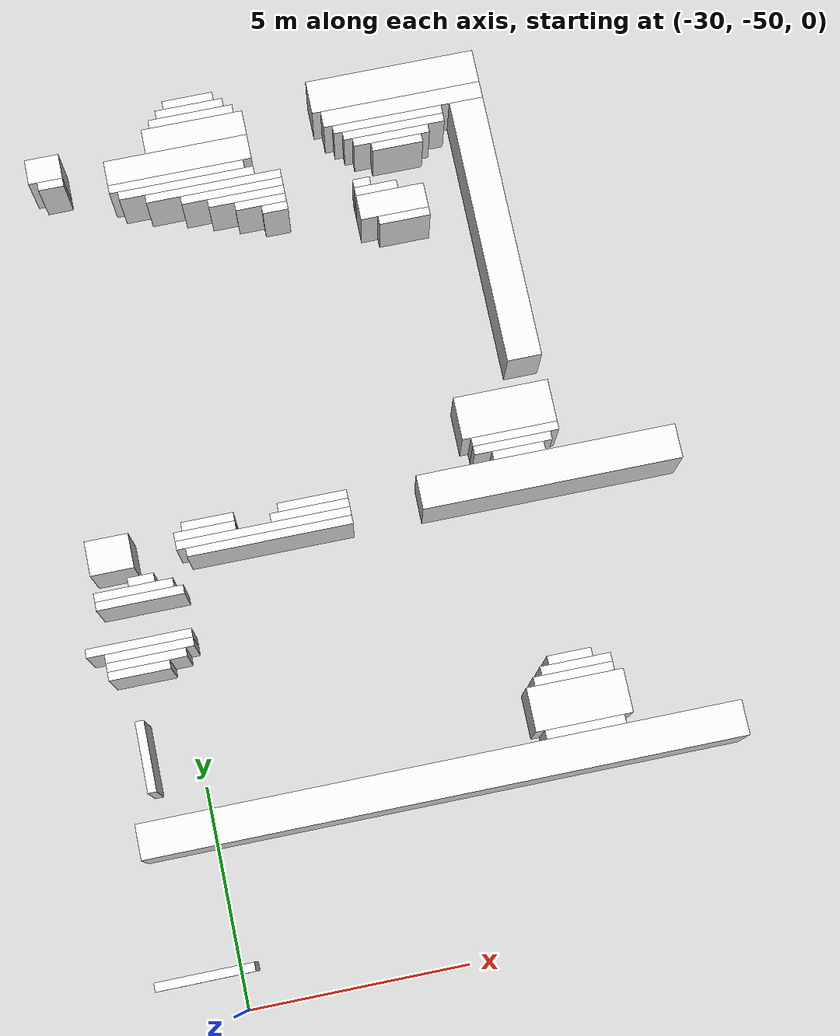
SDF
<sdf version="1.7">
 <world name="default">
  <model name="ground_plane">
   <static>1</static>
   <link name="link">
    <collision name="collision">
     <geometry><plane><normal>0 0 1</normal><size>120 120</size></plane></geometry>
    </collision>
    <visual name="visual">
     <geometry><plane><normal>0 0 1</normal><size>120 120</size></plane></geometry>
     <material>
      <script><uri>file://media/materials/scripts/gazebo.material</uri><name>Gazebo/Grey</name></script>
     </material>
    </visual>
   </link>
  </model>
  <model name="random_complex_02_model">
   <static>1</static>
   <link name="obs_3059">
    <pose>-27.4000 -29.3000 0.8000 0 0 0</pose>
    <collision name="obs_3059_col"><geometry><box><size>1.2000 0.2000 1.6000</size></box></geometry></collision>
    <visual name="obs_3059_vis">
     <geometry><box><size>1.2000 0.2000 1.6000</size></box></geometry>
     <material>
      <script><uri>file://media/materials/scripts/gazebo.material</uri><name>Gazebo/White</name></script>
     </material>
    </visual>
   </link>
   <link name="obs_3065">
    <pose>-27.4000 -29.5000 0.8000 0 0 0</pose>
    <collision name="obs_3065_col"><geometry><box><size>1.6000 0.2000 1.6000</size></box></geometry></collision>
    <visual name="obs_3065_vis">
     <geometry><box><size>1.6000 0.2000 1.6000</size></box></geometry>
     <material>
      <script><uri>file://media/materials/scripts/gazebo.material</uri><name>Gazebo/White</name></script>
     </material>
    </visual>
   </link>
   <link name="obs_3073">
    <pose>-27.4000 -29.7000 0.8000 0 0 0</pose>
    <collision name="obs_3073_col"><geometry><box><size>2.0000 0.2000 1.6000</size></box></geometry></collision>
    <visual name="obs_3073_vis">
     <geometry><box><size>2.0000 0.2000 1.6000</size></box></geometry>
     <material>
      <script><uri>file://media/materials/scripts/gazebo.material</uri><name>Gazebo/White</name></script>
     </material>
    </visual>
   </link>
   <link name="obs_3086">
    <pose>-22.6000 -29.8000 0.8000 0 0 0</pose>
    <collision name="obs_3086_col"><geometry><box><size>4.0000 0.8000 1.6000</size></box></geometry></collision>
    <visual name="obs_3086_vis">
     <geometry><box><size>4.0000 0.8000 1.6000</size></box></geometry>
     <material>
      <script><uri>file://media/materials/scripts/gazebo.material</uri><name>Gazebo/White</name></script>
     </material>
    </visual>
   </link>
   <link name="obs_3090">
    <pose>-27.4000 -30.1000 0.8000 0 0 0</pose>
    <collision name="obs_3090_col"><geometry><box><size>2.4000 0.6000 1.6000</size></box></geometry></collision>
    <visual name="obs_3090_vis">
     <geometry><box><size>2.4000 0.6000 1.6000</size></box></geometry>
     <material>
      <script><uri>file://media/materials/scripts/gazebo.material</uri><name>Gazebo/White</name></script>
     </material>
    </visual>
   </link>
   <link name="obs_3095">
    <pose>-31.0000 -30.3000 0.8000 0 0 0</pose>
    <collision name="obs_3095_col"><geometry><box><size>0.8000 0.6000 1.6000</size></box></geometry></collision>
    <visual name="obs_3095_vis">
     <geometry><box><size>0.8000 0.6000 1.6000</size></box></geometry>
     <material>
      <script><uri>file://media/materials/scripts/gazebo.material</uri><name>Gazebo/White</name></script>
     </material>
    </visual>
   </link>
   <link name="obs_3096">
    <pose>-22.5000 -30.4000 0.8000 0 0 0</pose>
    <collision name="obs_3096_col"><geometry><box><size>3.8000 0.4000 1.6000</size></box></geometry></collision>
    <visual name="obs_3096_vis">
     <geometry><box><size>3.8000 0.4000 1.6000</size></box></geometry>
     <material>
      <script><uri>file://media/materials/scripts/gazebo.material</uri><name>Gazebo/White</name></script>
     </material>
    </visual>
   </link>
   <link name="obs_3102">
    <pose>-30.9000 -30.7000 0.8000 0 0 0</pose>
    <collision name="obs_3102_col"><geometry><box><size>0.6000 0.2000 1.6000</size></box></geometry></collision>
    <visual name="obs_3102_vis">
     <geometry><box><size>0.6000 0.2000 1.6000</size></box></geometry>
     <material>
      <script><uri>file://media/materials/scripts/gazebo.material</uri><name>Gazebo/White</name></script>
     </material>
    </visual>
   </link>
   <link name="obs_3103">
    <pose>-22.9000 -30.7000 0.8000 0 0 0</pose>
    <collision name="obs_3103_col"><geometry><box><size>2.6000 0.2000 1.6000</size></box></geometry></collision>
    <visual name="obs_3103_vis">
     <geometry><box><size>2.6000 0.2000 1.6000</size></box></geometry>
     <material>
      <script><uri>file://media/materials/scripts/gazebo.material</uri><name>Gazebo/White</name></script>
     </material>
    </visual>
   </link>
   <link name="obs_3107">
    <pose>-27.9000 -30.7000 0.8000 0 0 0</pose>
    <collision name="obs_3107_col"><geometry><box><size>3.4000 0.6000 1.6000</size></box></geometry></collision>
    <visual name="obs_3107_vis">
     <geometry><box><size>3.4000 0.6000 1.6000</size></box></geometry>
     <material>
      <script><uri>file://media/materials/scripts/gazebo.material</uri><name>Gazebo/White</name></script>
     </material>
    </visual>
   </link>
   <link name="obs_3108">
    <pose>-22.8000 -30.9000 0.8000 0 0 0</pose>
    <collision name="obs_3108_col"><geometry><box><size>2.4000 0.2000 1.6000</size></box></geometry></collision>
    <visual name="obs_3108_vis">
     <geometry><box><size>2.4000 0.2000 1.6000</size></box></geometry>
     <material>
      <script><uri>file://media/materials/scripts/gazebo.material</uri><name>Gazebo/White</name></script>
     </material>
    </visual>
   </link>
   <link name="obs_3117">
    <pose>-28.0000 -31.1000 0.8000 0 0 0</pose>
    <collision name="obs_3117_col"><geometry><box><size>3.2000 0.2000 1.6000</size></box></geometry></collision>
    <visual name="obs_3117_vis">
     <geometry><box><size>3.2000 0.2000 1.6000</size></box></geometry>
     <material>
      <script><uri>file://media/materials/scripts/gazebo.material</uri><name>Gazebo/White</name></script>
     </material>
    </visual>
   </link>
   <link name="obs_3118">
    <pose>-22.9000 -31.1000 0.8000 0 0 0</pose>
    <collision name="obs_3118_col"><geometry><box><size>1.8000 0.2000 1.6000</size></box></geometry></collision>
    <visual name="obs_3118_vis">
     <geometry><box><size>1.8000 0.2000 1.6000</size></box></geometry>
     <material>
      <script><uri>file://media/materials/scripts/gazebo.material</uri><name>Gazebo/White</name></script>
     </material>
    </visual>
   </link>
   <link name="obs_3122">
    <pose>-27.8000 -31.3000 0.8000 0 0 0</pose>
    <collision name="obs_3122_col"><geometry><box><size>3.2000 0.2000 1.6000</size></box></geometry></collision>
    <visual name="obs_3122_vis">
     <geometry><box><size>3.2000 0.2000 1.6000</size></box></geometry>
     <material>
      <script><uri>file://media/materials/scripts/gazebo.material</uri><name>Gazebo/White</name></script>
     </material>
    </visual>
   </link>
   <link name="obs_3123">
    <pose>-22.8000 -31.3000 0.8000 0 0 0</pose>
    <collision name="obs_3123_col"><geometry><box><size>1.2000 0.2000 1.6000</size></box></geometry></collision>
    <visual name="obs_3123_vis">
     <geometry><box><size>1.2000 0.2000 1.6000</size></box></geometry>
     <material>
      <script><uri>file://media/materials/scripts/gazebo.material</uri><name>Gazebo/White</name></script>
     </material>
    </visual>
   </link>
   <link name="obs_3129">
    <pose>-27.2000 -31.5000 0.8000 0 0 0</pose>
    <collision name="obs_3129_col"><geometry><box><size>3.2000 0.2000 1.6000</size></box></geometry></collision>
    <visual name="obs_3129_vis">
     <geometry><box><size>3.2000 0.2000 1.6000</size></box></geometry>
     <material>
      <script><uri>file://media/materials/scripts/gazebo.material</uri><name>Gazebo/White</name></script>
     </material>
    </visual>
   </link>
   <link name="obs_3134">
    <pose>-26.8000 -31.7000 0.8000 0 0 0</pose>
    <collision name="obs_3134_col"><geometry><box><size>2.4000 0.2000 1.6000</size></box></geometry></collision>
    <visual name="obs_3134_vis">
     <geometry><box><size>2.4000 0.2000 1.6000</size></box></geometry>
     <material>
      <script><uri>file://media/materials/scripts/gazebo.material</uri><name>Gazebo/White</name></script>
     </material>
    </visual>
   </link>
   <link name="obs_3144">
    <pose>-26.5000 -31.9000 0.8000 0 0 0</pose>
    <collision name="obs_3144_col"><geometry><box><size>1.8000 0.2000 1.6000</size></box></geometry></collision>
    <visual name="obs_3144_vis">
     <geometry><box><size>1.8000 0.2000 1.6000</size></box></geometry>
     <material>
      <script><uri>file://media/materials/scripts/gazebo.material</uri><name>Gazebo/White</name></script>
     </material>
    </visual>
   </link>
   <link name="obs_3149">
    <pose>-26.2000 -32.1000 0.8000 0 0 0</pose>
    <collision name="obs_3149_col"><geometry><box><size>1.2000 0.2000 1.6000</size></box></geometry></collision>
    <visual name="obs_3149_vis">
     <geometry><box><size>1.2000 0.2000 1.6000</size></box></geometry>
     <material>
      <script><uri>file://media/materials/scripts/gazebo.material</uri><name>Gazebo/White</name></script>
     </material>
    </visual>
   </link>
   <link name="obs_3150">
    <pose>-23.8000 -32.1000 0.8000 0 0 0</pose>
    <collision name="obs_3150_col"><geometry><box><size>0.4000 0.2000 1.6000</size></box></geometry></collision>
    <visual name="obs_3150_vis">
     <geometry><box><size>0.4000 0.2000 1.6000</size></box></geometry>
     <material>
      <script><uri>file://media/materials/scripts/gazebo.material</uri><name>Gazebo/White</name></script>
     </material>
    </visual>
   </link>
   <link name="obs_3154">
    <pose>-25.9000 -32.3000 0.8000 0 0 0</pose>
    <collision name="obs_3154_col"><geometry><box><size>0.6000 0.2000 1.6000</size></box></geometry></collision>
    <visual name="obs_3154_vis">
     <geometry><box><size>0.6000 0.2000 1.6000</size></box></geometry>
     <material>
      <script><uri>file://media/materials/scripts/gazebo.material</uri><name>Gazebo/White</name></script>
     </material>
    </visual>
   </link>
   <link name="obs_3155">
    <pose>-23.5000 -32.3000 0.8000 0 0 0</pose>
    <collision name="obs_3155_col"><geometry><box><size>1.0000 0.2000 1.6000</size></box></geometry></collision>
    <visual name="obs_3155_vis">
     <geometry><box><size>1.0000 0.2000 1.6000</size></box></geometry>
     <material>
      <script><uri>file://media/materials/scripts/gazebo.material</uri><name>Gazebo/White</name></script>
     </material>
    </visual>
   </link>
   <link name="obs_3163">
    <pose>-23.2000 -32.7000 0.8000 0 0 0</pose>
    <collision name="obs_3163_col"><geometry><box><size>1.6000 0.6000 1.6000</size></box></geometry></collision>
    <visual name="obs_3163_vis">
     <geometry><box><size>1.6000 0.6000 1.6000</size></box></geometry>
     <material>
      <script><uri>file://media/materials/scripts/gazebo.material</uri><name>Gazebo/White</name></script>
     </material>
    </visual>
   </link>
   <link name="obs_3167">
    <pose>-23.0000 -33.1000 0.8000 0 0 0</pose>
    <collision name="obs_3167_col"><geometry><box><size>1.2000 0.2000 1.6000</size></box></geometry></collision>
    <visual name="obs_3167_vis">
     <geometry><box><size>1.2000 0.2000 1.6000</size></box></geometry>
     <material>
      <script><uri>file://media/materials/scripts/gazebo.material</uri><name>Gazebo/White</name></script>
     </material>
    </visual>
   </link>
   <link name="obs_3220">
    <pose>-21.0000 -33.8000 0.8000 0 0 0</pose>
    <collision name="obs_3220_col"><geometry><box><size>0.8000 6.4000 1.6000</size></box></geometry></collision>
    <visual name="obs_3220_vis">
     <geometry><box><size>0.8000 6.4000 1.6000</size></box></geometry>
     <material>
      <script><uri>file://media/materials/scripts/gazebo.material</uri><name>Gazebo/White</name></script>
     </material>
    </visual>
   </link>
   <link name="obs_3267">
    <pose>-21.7000 -38.1000 0.8000 0 0 0</pose>
    <collision name="obs_3267_col"><geometry><box><size>2.2000 1.0000 1.6000</size></box></geometry></collision>
    <visual name="obs_3267_vis">
     <geometry><box><size>2.2000 1.0000 1.6000</size></box></geometry>
     <material>
      <script><uri>file://media/materials/scripts/gazebo.material</uri><name>Gazebo/White</name></script>
     </material>
    </visual>
   </link>
   <link name="obs_3276">
    <pose>-21.6000 -38.7000 0.8000 0 0 0</pose>
    <collision name="obs_3276_col"><geometry><box><size>2.0000 0.2000 1.6000</size></box></geometry></collision>
    <visual name="obs_3276_vis">
     <geometry><box><size>2.0000 0.2000 1.6000</size></box></geometry>
     <material>
      <script><uri>file://media/materials/scripts/gazebo.material</uri><name>Gazebo/White</name></script>
     </material>
    </visual>
   </link>
   <link name="obs_3283">
    <pose>-21.7000 -38.9000 0.8000 0 0 0</pose>
    <collision name="obs_3283_col"><geometry><box><size>1.8000 0.2000 1.6000</size></box></geometry></collision>
    <visual name="obs_3283_vis">
     <geometry><box><size>1.8000 0.2000 1.6000</size></box></geometry>
     <material>
      <script><uri>file://media/materials/scripts/gazebo.material</uri><name>Gazebo/White</name></script>
     </material>
    </visual>
   </link>
   <link name="obs_3290">
    <pose>-21.6000 -39.1000 0.8000 0 0 0</pose>
    <collision name="obs_3290_col"><geometry><box><size>1.2000 0.2000 1.6000</size></box></geometry></collision>
    <visual name="obs_3290_vis">
     <geometry><box><size>1.2000 0.2000 1.6000</size></box></geometry>
     <material>
      <script><uri>file://media/materials/scripts/gazebo.material</uri><name>Gazebo/White</name></script>
     </material>
    </visual>
   </link>
   <link name="obs_3295">
    <pose>-28.8000 -39.3000 0.8000 0 0 0</pose>
    <collision name="obs_3295_col"><geometry><box><size>1.2000 0.2000 1.6000</size></box></geometry></collision>
    <visual name="obs_3295_vis">
     <geometry><box><size>1.2000 0.2000 1.6000</size></box></geometry>
     <material>
      <script><uri>file://media/materials/scripts/gazebo.material</uri><name>Gazebo/White</name></script>
     </material>
    </visual>
   </link>
   <link name="obs_3296">
    <pose>-26.4000 -39.3000 0.8000 0 0 0</pose>
    <collision name="obs_3296_col"><geometry><box><size>1.6000 0.2000 1.6000</size></box></geometry></collision>
    <visual name="obs_3296_vis">
     <geometry><box><size>1.6000 0.2000 1.6000</size></box></geometry>
     <material>
      <script><uri>file://media/materials/scripts/gazebo.material</uri><name>Gazebo/White</name></script>
     </material>
    </visual>
   </link>
   <link name="obs_3298">
    <pose>-28.9000 -39.5000 0.8000 0 0 0</pose>
    <collision name="obs_3298_col"><geometry><box><size>1.4000 0.2000 1.6000</size></box></geometry></collision>
    <visual name="obs_3298_vis">
     <geometry><box><size>1.4000 0.2000 1.6000</size></box></geometry>
     <material>
      <script><uri>file://media/materials/scripts/gazebo.material</uri><name>Gazebo/White</name></script>
     </material>
    </visual>
   </link>
   <link name="obs_3299">
    <pose>-26.5000 -39.5000 0.8000 0 0 0</pose>
    <collision name="obs_3299_col"><geometry><box><size>1.8000 0.2000 1.6000</size></box></geometry></collision>
    <visual name="obs_3299_vis">
     <geometry><box><size>1.8000 0.2000 1.6000</size></box></geometry>
     <material>
      <script><uri>file://media/materials/scripts/gazebo.material</uri><name>Gazebo/White</name></script>
     </material>
    </visual>
   </link>
   <link name="obs_3303">
    <pose>-27.6000 -39.7000 0.8000 0 0 0</pose>
    <collision name="obs_3303_col"><geometry><box><size>4.0000 0.2000 1.6000</size></box></geometry></collision>
    <visual name="obs_3303_vis">
     <geometry><box><size>4.0000 0.2000 1.6000</size></box></geometry>
     <material>
      <script><uri>file://media/materials/scripts/gazebo.material</uri><name>Gazebo/White</name></script>
     </material>
    </visual>
   </link>
   <link name="obs_3307">
    <pose>-31.1000 -39.6000 0.8000 0 0 0</pose>
    <collision name="obs_3307_col"><geometry><box><size>1.0000 0.8000 1.6000</size></box></geometry></collision>
    <visual name="obs_3307_vis">
     <geometry><box><size>1.0000 0.8000 1.6000</size></box></geometry>
     <material>
      <script><uri>file://media/materials/scripts/gazebo.material</uri><name>Gazebo/White</name></script>
     </material>
    </visual>
   </link>
   <link name="obs_3308">
    <pose>-21.0000 -39.6000 0.8000 0 0 0</pose>
    <collision name="obs_3308_col"><geometry><box><size>6.0000 0.8000 1.6000</size></box></geometry></collision>
    <visual name="obs_3308_vis">
     <geometry><box><size>6.0000 0.8000 1.6000</size></box></geometry>
     <material>
      <script><uri>file://media/materials/scripts/gazebo.material</uri><name>Gazebo/White</name></script>
     </material>
    </visual>
   </link>
   <link name="obs_3309">
    <pose>-27.5000 -39.9000 0.8000 0 0 0</pose>
    <collision name="obs_3309_col"><geometry><box><size>3.8000 0.2000 1.6000</size></box></geometry></collision>
    <visual name="obs_3309_vis">
     <geometry><box><size>3.8000 0.2000 1.6000</size></box></geometry>
     <material>
      <script><uri>file://media/materials/scripts/gazebo.material</uri><name>Gazebo/White</name></script>
     </material>
    </visual>
   </link>
   <link name="obs_3318">
    <pose>-30.5000 -40.3000 0.8000 0 0 0</pose>
    <collision name="obs_3318_col"><geometry><box><size>0.6000 0.2000 1.6000</size></box></geometry></collision>
    <visual name="obs_3318_vis">
     <geometry><box><size>0.6000 0.2000 1.6000</size></box></geometry>
     <material>
      <script><uri>file://media/materials/scripts/gazebo.material</uri><name>Gazebo/White</name></script>
     </material>
    </visual>
   </link>
   <link name="obs_3325">
    <pose>-30.7000 -40.5000 0.8000 0 0 0</pose>
    <collision name="obs_3325_col"><geometry><box><size>1.8000 0.2000 1.6000</size></box></geometry></collision>
    <visual name="obs_3325_vis">
     <geometry><box><size>1.8000 0.2000 1.6000</size></box></geometry>
     <material>
      <script><uri>file://media/materials/scripts/gazebo.material</uri><name>Gazebo/White</name></script>
     </material>
    </visual>
   </link>
   <link name="obs_3330">
    <pose>-30.6000 -40.7000 0.8000 0 0 0</pose>
    <collision name="obs_3330_col"><geometry><box><size>2.0000 0.2000 1.6000</size></box></geometry></collision>
    <visual name="obs_3330_vis">
     <geometry><box><size>2.0000 0.2000 1.6000</size></box></geometry>
     <material>
      <script><uri>file://media/materials/scripts/gazebo.material</uri><name>Gazebo/White</name></script>
     </material>
    </visual>
   </link>
   <link name="obs_3370">
    <pose>-30.8000 -41.7000 0.8000 0 0 0</pose>
    <collision name="obs_3370_col"><geometry><box><size>2.4000 0.2000 1.6000</size></box></geometry></collision>
    <visual name="obs_3370_vis">
     <geometry><box><size>2.4000 0.2000 1.6000</size></box></geometry>
     <material>
      <script><uri>file://media/materials/scripts/gazebo.material</uri><name>Gazebo/White</name></script>
     </material>
    </visual>
   </link>
   <link name="obs_3379">
    <pose>-30.6000 -41.9000 0.8000 0 0 0</pose>
    <collision name="obs_3379_col"><geometry><box><size>2.0000 0.2000 1.6000</size></box></geometry></collision>
    <visual name="obs_3379_vis">
     <geometry><box><size>2.0000 0.2000 1.6000</size></box></geometry>
     <material>
      <script><uri>file://media/materials/scripts/gazebo.material</uri><name>Gazebo/White</name></script>
     </material>
    </visual>
   </link>
   <link name="obs_3389">
    <pose>-30.7000 -42.1000 0.8000 0 0 0</pose>
    <collision name="obs_3389_col"><geometry><box><size>1.8000 0.2000 1.6000</size></box></geometry></collision>
    <visual name="obs_3389_vis">
     <geometry><box><size>1.8000 0.2000 1.6000</size></box></geometry>
     <material>
      <script><uri>file://media/materials/scripts/gazebo.material</uri><name>Gazebo/White</name></script>
     </material>
    </visual>
   </link>
   <link name="obs_3396">
    <pose>-30.9000 -42.3000 0.8000 0 0 0</pose>
    <collision name="obs_3396_col"><geometry><box><size>1.4000 0.2000 1.6000</size></box></geometry></collision>
    <visual name="obs_3396_vis">
     <geometry><box><size>1.4000 0.2000 1.6000</size></box></geometry>
     <material>
      <script><uri>file://media/materials/scripts/gazebo.material</uri><name>Gazebo/White</name></script>
     </material>
    </visual>
   </link>
   <link name="obs_3453">
    <pose>-21.5000 -43.9000 0.8000 0 0 0</pose>
    <collision name="obs_3453_col"><geometry><box><size>1.0000 0.2000 1.6000</size></box></geometry></collision>
    <visual name="obs_3453_vis">
     <geometry><box><size>1.0000 0.2000 1.6000</size></box></geometry>
     <material>
      <script><uri>file://media/materials/scripts/gazebo.material</uri><name>Gazebo/White</name></script>
     </material>
    </visual>
   </link>
   <link name="obs_3461">
    <pose>-21.4000 -44.1000 0.8000 0 0 0</pose>
    <collision name="obs_3461_col"><geometry><box><size>1.6000 0.2000 1.6000</size></box></geometry></collision>
    <visual name="obs_3461_vis">
     <geometry><box><size>1.6000 0.2000 1.6000</size></box></geometry>
     <material>
      <script><uri>file://media/materials/scripts/gazebo.material</uri><name>Gazebo/White</name></script>
     </material>
    </visual>
   </link>
   <link name="obs_3471">
    <pose>-21.5000 -44.3000 0.8000 0 0 0</pose>
    <collision name="obs_3471_col"><geometry><box><size>1.8000 0.2000 1.6000</size></box></geometry></collision>
    <visual name="obs_3471_vis">
     <geometry><box><size>1.8000 0.2000 1.6000</size></box></geometry>
     <material>
      <script><uri>file://media/materials/scripts/gazebo.material</uri><name>Gazebo/White</name></script>
     </material>
    </visual>
   </link>
   <link name="obs_3491">
    <pose>-31.1000 -44.2000 0.8000 0 0 0</pose>
    <collision name="obs_3491_col"><geometry><box><size>0.2000 1.6000 1.6000</size></box></geometry></collision>
    <visual name="obs_3491_vis">
     <geometry><box><size>0.2000 1.6000 1.6000</size></box></geometry>
     <material>
      <script><uri>file://media/materials/scripts/gazebo.material</uri><name>Gazebo/White</name></script>
     </material>
    </visual>
   </link>
   <link name="obs_3511">
    <pose>-21.5000 -44.9000 0.8000 0 0 0</pose>
    <collision name="obs_3511_col"><geometry><box><size>2.2000 1.0000 1.6000</size></box></geometry></collision>
    <visual name="obs_3511_vis">
     <geometry><box><size>2.2000 1.0000 1.6000</size></box></geometry>
     <material>
      <script><uri>file://media/materials/scripts/gazebo.material</uri><name>Gazebo/White</name></script>
     </material>
    </visual>
   </link>
   <link name="obs_3527">
    <pose>-21.5000 -45.5000 0.8000 0 0 0</pose>
    <collision name="obs_3527_col"><geometry><box><size>1.8000 0.2000 1.6000</size></box></geometry></collision>
    <visual name="obs_3527_vis">
     <geometry><box><size>1.8000 0.2000 1.6000</size></box></geometry>
     <material>
      <script><uri>file://media/materials/scripts/gazebo.material</uri><name>Gazebo/White</name></script>
     </material>
    </visual>
   </link>
   <link name="obs_3560">
    <pose>-24.8000 -46.0000 0.8000 0 0 0</pose>
    <collision name="obs_3560_col"><geometry><box><size>13.6000 0.8000 1.6000</size></box></geometry></collision>
    <visual name="obs_3560_vis">
     <geometry><box><size>13.6000 0.8000 1.6000</size></box></geometry>
     <material>
      <script><uri>file://media/materials/scripts/gazebo.material</uri><name>Gazebo/White</name></script>
     </material>
    </visual>
   </link>
   <link name="obs_3668">
    <pose>-30.7000 -49.1000 0.8000 0 0 0</pose>
    <collision name="obs_3668_col"><geometry><box><size>2.2000 0.2000 1.6000</size></box></geometry></collision>
    <visual name="obs_3668_vis">
     <geometry><box><size>2.2000 0.2000 1.6000</size></box></geometry>
     <material>
      <script><uri>file://media/materials/scripts/gazebo.material</uri><name>Gazebo/White</name></script>
     </material>
    </visual>
   </link>
  </model>
 </world>
</sdf>
